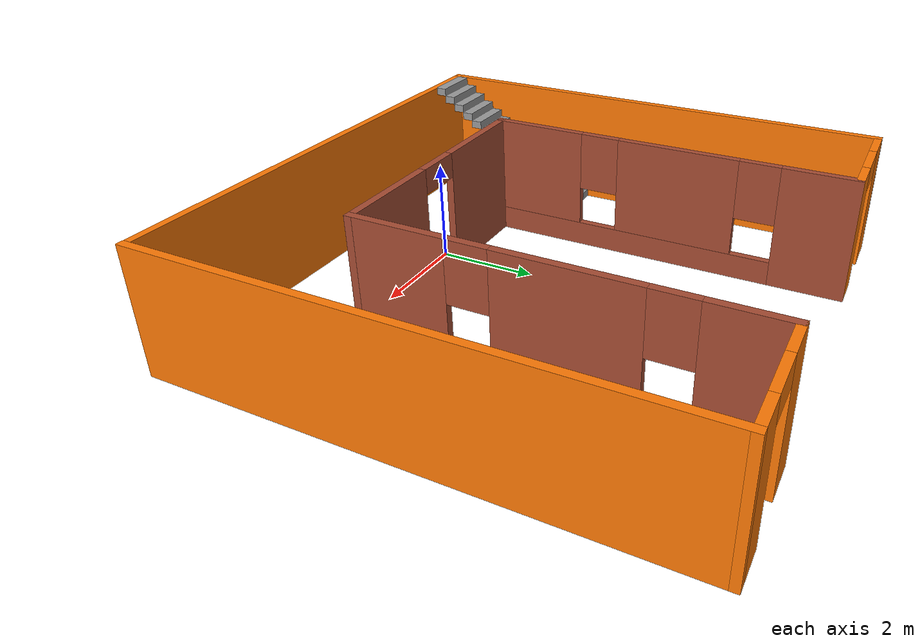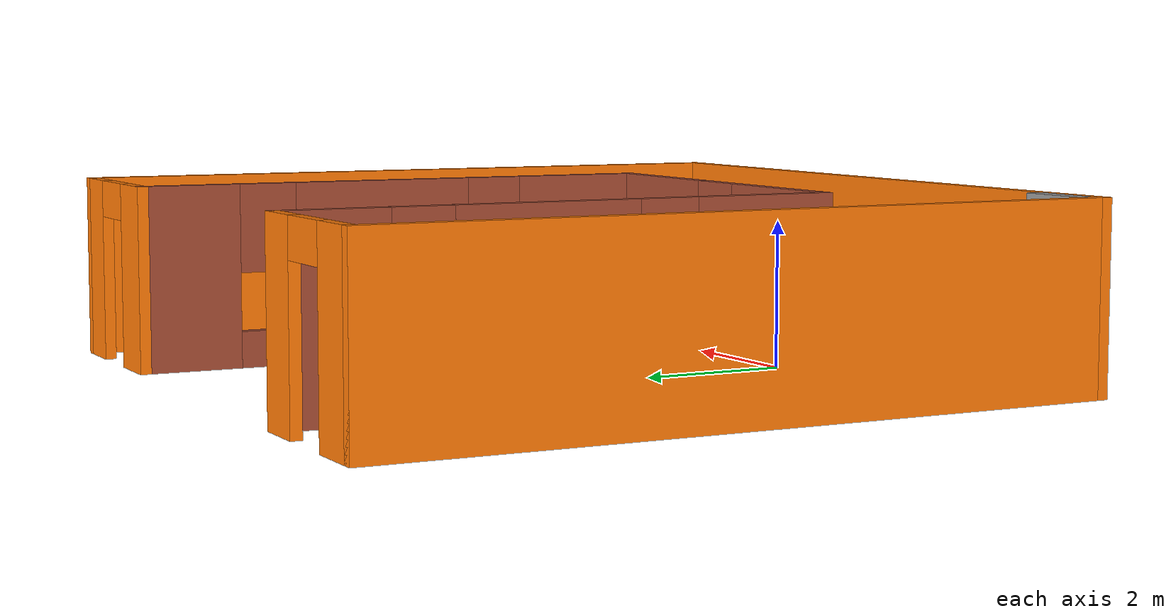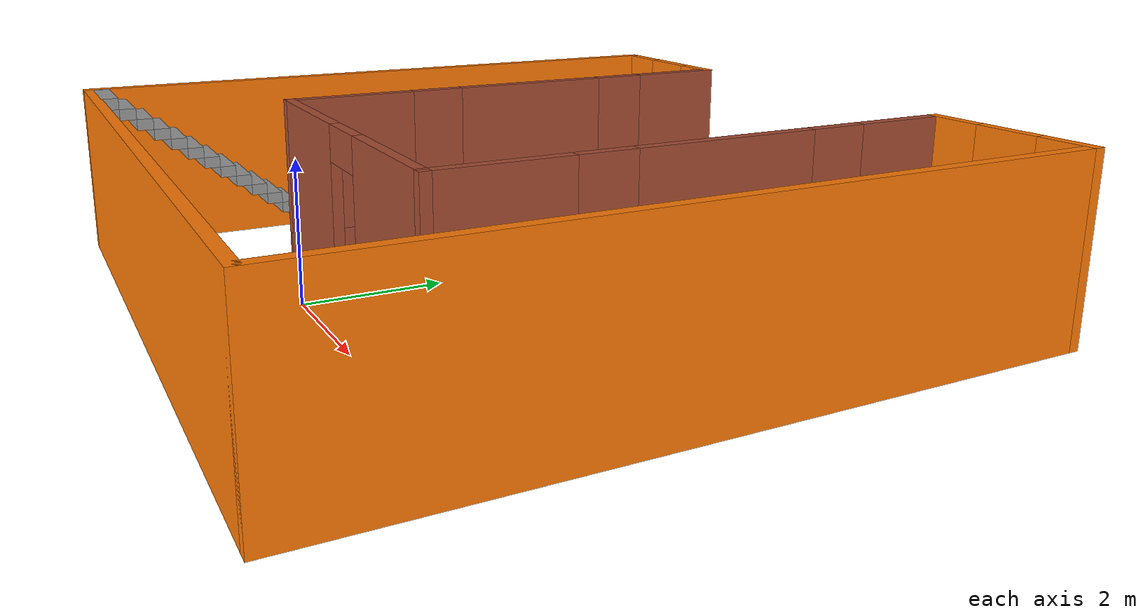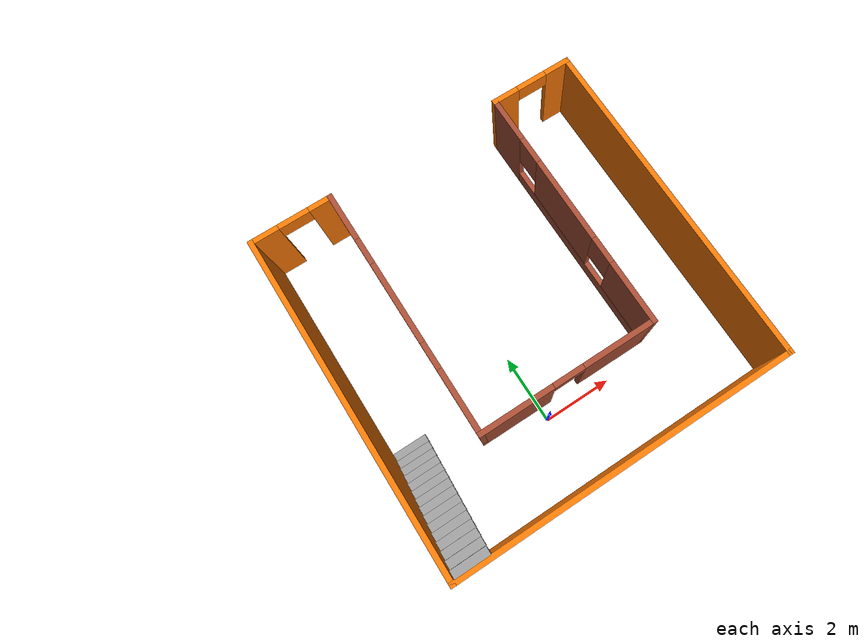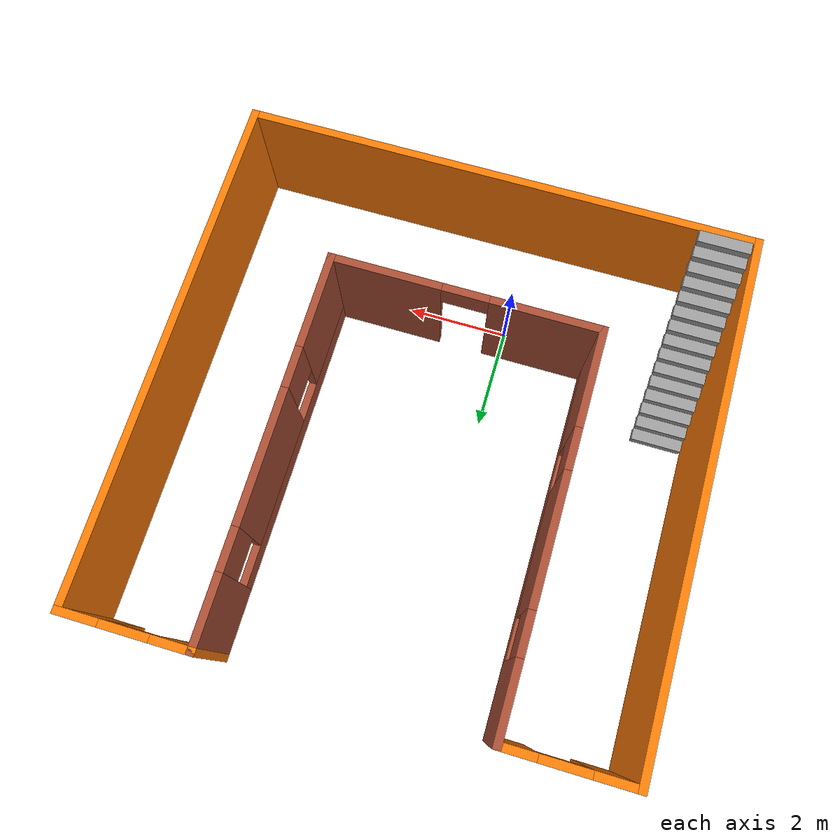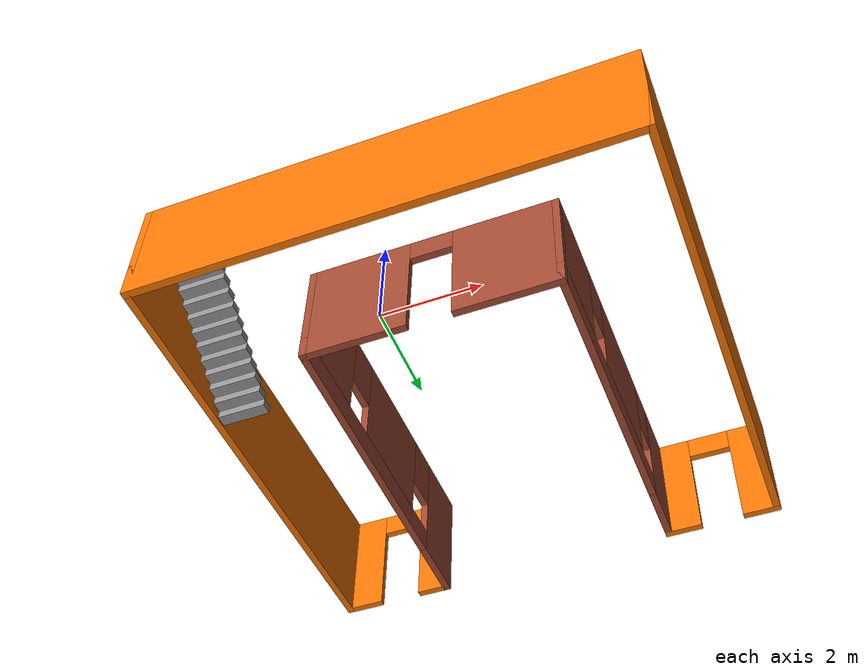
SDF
<?xml version='1.0'?>
<sdf version='1.6'>
  <model name='mybuilding'>
    <pose frame=''>0.805 2.865 0 0 -0 0</pose>
    <link name='Stairs_0'>
      <visual name='Stairs_0_Visual_0'>
        <pose frame=''>-4.32864 -1.48395 0.083333 0 -0 0</pose>
        <geometry>
          <box>
            <size>1 0.233333 0.166667</size>
          </box>
        </geometry>
        <material>
          <script>
            <uri>file://media/materials/scripts/gazebo.material</uri>
            <name>Gazebo/Grey</name>
          </script>
          <ambient>1 1 1 1</ambient>
        </material>
        <meta>
          <layer>0</layer>
        </meta>
      </visual>
      <collision name='Stairs_0_Collision_0'>
        <geometry>
          <box>
            <size>1 0.233333 0.166667</size>
          </box>
        </geometry>
        <pose frame=''>-4.32864 -1.48395 0.083333 0 -0 0</pose>
      </collision>
      <visual name='Stairs_0_Visual_1'>
        <pose frame=''>-4.32864 -1.71729 0.25 0 -0 0</pose>
        <geometry>
          <box>
            <size>1 0.233333 0.166667</size>
          </box>
        </geometry>
        <material>
          <script>
            <uri>file://media/materials/scripts/gazebo.material</uri>
            <name>Gazebo/Grey</name>
          </script>
          <ambient>1 1 1 1</ambient>
        </material>
        <meta>
          <layer>0</layer>
        </meta>
      </visual>
      <collision name='Stairs_0_Collision_1'>
        <geometry>
          <box>
            <size>1 0.233333 0.166667</size>
          </box>
        </geometry>
        <pose frame=''>-4.32864 -1.71729 0.25 0 -0 0</pose>
      </collision>
      <visual name='Stairs_0_Visual_2'>
        <pose frame=''>-4.32864 -1.95062 0.416667 0 -0 0</pose>
        <geometry>
          <box>
            <size>1 0.233333 0.166667</size>
          </box>
        </geometry>
        <material>
          <script>
            <uri>file://media/materials/scripts/gazebo.material</uri>
            <name>Gazebo/Grey</name>
          </script>
          <ambient>1 1 1 1</ambient>
        </material>
        <meta>
          <layer>0</layer>
        </meta>
      </visual>
      <collision name='Stairs_0_Collision_2'>
        <geometry>
          <box>
            <size>1 0.233333 0.166667</size>
          </box>
        </geometry>
        <pose frame=''>-4.32864 -1.95062 0.416667 0 -0 0</pose>
      </collision>
      <visual name='Stairs_0_Visual_3'>
        <pose frame=''>-4.32864 -2.18395 0.583333 0 -0 0</pose>
        <geometry>
          <box>
            <size>1 0.233333 0.166667</size>
          </box>
        </geometry>
        <material>
          <script>
            <uri>file://media/materials/scripts/gazebo.material</uri>
            <name>Gazebo/Grey</name>
          </script>
          <ambient>1 1 1 1</ambient>
        </material>
        <meta>
          <layer>0</layer>
        </meta>
      </visual>
      <collision name='Stairs_0_Collision_3'>
        <geometry>
          <box>
            <size>1 0.233333 0.166667</size>
          </box>
        </geometry>
        <pose frame=''>-4.32864 -2.18395 0.583333 0 -0 0</pose>
      </collision>
      <visual name='Stairs_0_Visual_4'>
        <pose frame=''>-4.32864 -2.41729 0.75 0 -0 0</pose>
        <geometry>
          <box>
            <size>1 0.233333 0.166667</size>
          </box>
        </geometry>
        <material>
          <script>
            <uri>file://media/materials/scripts/gazebo.material</uri>
            <name>Gazebo/Grey</name>
          </script>
          <ambient>1 1 1 1</ambient>
        </material>
        <meta>
          <layer>0</layer>
        </meta>
      </visual>
      <collision name='Stairs_0_Collision_4'>
        <geometry>
          <box>
            <size>1 0.233333 0.166667</size>
          </box>
        </geometry>
        <pose frame=''>-4.32864 -2.41729 0.75 0 -0 0</pose>
      </collision>
      <visual name='Stairs_0_Visual_5'>
        <pose frame=''>-4.32864 -2.65062 0.916667 0 -0 0</pose>
        <geometry>
          <box>
            <size>1 0.233333 0.166667</size>
          </box>
        </geometry>
        <material>
          <script>
            <uri>file://media/materials/scripts/gazebo.material</uri>
            <name>Gazebo/Grey</name>
          </script>
          <ambient>1 1 1 1</ambient>
        </material>
        <meta>
          <layer>0</layer>
        </meta>
      </visual>
      <collision name='Stairs_0_Collision_5'>
        <geometry>
          <box>
            <size>1 0.233333 0.166667</size>
          </box>
        </geometry>
        <pose frame=''>-4.32864 -2.65062 0.916667 0 -0 0</pose>
      </collision>
      <visual name='Stairs_0_Visual_6'>
        <pose frame=''>-4.32864 -2.88395 1.08333 0 -0 0</pose>
        <geometry>
          <box>
            <size>1 0.233333 0.166667</size>
          </box>
        </geometry>
        <material>
          <script>
            <uri>file://media/materials/scripts/gazebo.material</uri>
            <name>Gazebo/Grey</name>
          </script>
          <ambient>1 1 1 1</ambient>
        </material>
        <meta>
          <layer>0</layer>
        </meta>
      </visual>
      <collision name='Stairs_0_Collision_6'>
        <geometry>
          <box>
            <size>1 0.233333 0.166667</size>
          </box>
        </geometry>
        <pose frame=''>-4.32864 -2.88395 1.08333 0 -0 0</pose>
      </collision>
      <visual name='Stairs_0_Visual_7'>
        <pose frame=''>-4.32864 -3.11729 1.25 0 -0 0</pose>
        <geometry>
          <box>
            <size>1 0.233333 0.166667</size>
          </box>
        </geometry>
        <material>
          <script>
            <uri>file://media/materials/scripts/gazebo.material</uri>
            <name>Gazebo/Grey</name>
          </script>
          <ambient>1 1 1 1</ambient>
        </material>
        <meta>
          <layer>0</layer>
        </meta>
      </visual>
      <collision name='Stairs_0_Collision_7'>
        <geometry>
          <box>
            <size>1 0.233333 0.166667</size>
          </box>
        </geometry>
        <pose frame=''>-4.32864 -3.11729 1.25 0 -0 0</pose>
      </collision>
      <visual name='Stairs_0_Visual_8'>
        <pose frame=''>-4.32864 -3.35062 1.41667 0 -0 0</pose>
        <geometry>
          <box>
            <size>1 0.233333 0.166667</size>
          </box>
        </geometry>
        <material>
          <script>
            <uri>file://media/materials/scripts/gazebo.material</uri>
            <name>Gazebo/Grey</name>
          </script>
          <ambient>1 1 1 1</ambient>
        </material>
        <meta>
          <layer>0</layer>
        </meta>
      </visual>
      <collision name='Stairs_0_Collision_8'>
        <geometry>
          <box>
            <size>1 0.233333 0.166667</size>
          </box>
        </geometry>
        <pose frame=''>-4.32864 -3.35062 1.41667 0 -0 0</pose>
      </collision>
      <visual name='Stairs_0_Visual_9'>
        <pose frame=''>-4.32864 -3.58395 1.58333 0 -0 0</pose>
        <geometry>
          <box>
            <size>1 0.233333 0.166667</size>
          </box>
        </geometry>
        <material>
          <script>
            <uri>file://media/materials/scripts/gazebo.material</uri>
            <name>Gazebo/Grey</name>
          </script>
          <ambient>1 1 1 1</ambient>
        </material>
        <meta>
          <layer>0</layer>
        </meta>
      </visual>
      <collision name='Stairs_0_Collision_9'>
        <geometry>
          <box>
            <size>1 0.233333 0.166667</size>
          </box>
        </geometry>
        <pose frame=''>-4.32864 -3.58395 1.58333 0 -0 0</pose>
      </collision>
      <visual name='Stairs_0_Visual_10'>
        <pose frame=''>-4.32864 -3.81729 1.75 0 -0 0</pose>
        <geometry>
          <box>
            <size>1 0.233333 0.166667</size>
          </box>
        </geometry>
        <material>
          <script>
            <uri>file://media/materials/scripts/gazebo.material</uri>
            <name>Gazebo/Grey</name>
          </script>
          <ambient>1 1 1 1</ambient>
        </material>
        <meta>
          <layer>0</layer>
        </meta>
      </visual>
      <collision name='Stairs_0_Collision_10'>
        <geometry>
          <box>
            <size>1 0.233333 0.166667</size>
          </box>
        </geometry>
        <pose frame=''>-4.32864 -3.81729 1.75 0 -0 0</pose>
      </collision>
      <visual name='Stairs_0_Visual_11'>
        <pose frame=''>-4.32864 -4.05062 1.91667 0 -0 0</pose>
        <geometry>
          <box>
            <size>1 0.233333 0.166667</size>
          </box>
        </geometry>
        <material>
          <script>
            <uri>file://media/materials/scripts/gazebo.material</uri>
            <name>Gazebo/Grey</name>
          </script>
          <ambient>1 1 1 1</ambient>
        </material>
        <meta>
          <layer>0</layer>
        </meta>
      </visual>
      <collision name='Stairs_0_Collision_11'>
        <geometry>
          <box>
            <size>1 0.233333 0.166667</size>
          </box>
        </geometry>
        <pose frame=''>-4.32864 -4.05062 1.91667 0 -0 0</pose>
      </collision>
      <visual name='Stairs_0_Visual_12'>
        <pose frame=''>-4.32864 -4.28395 2.08333 0 -0 0</pose>
        <geometry>
          <box>
            <size>1 0.233333 0.166667</size>
          </box>
        </geometry>
        <material>
          <script>
            <uri>file://media/materials/scripts/gazebo.material</uri>
            <name>Gazebo/Grey</name>
          </script>
          <ambient>1 1 1 1</ambient>
        </material>
        <meta>
          <layer>0</layer>
        </meta>
      </visual>
      <collision name='Stairs_0_Collision_12'>
        <geometry>
          <box>
            <size>1 0.233333 0.166667</size>
          </box>
        </geometry>
        <pose frame=''>-4.32864 -4.28395 2.08333 0 -0 0</pose>
      </collision>
      <visual name='Stairs_0_Visual_13'>
        <pose frame=''>-4.32864 -4.51729 2.25 0 -0 0</pose>
        <geometry>
          <box>
            <size>1 0.233333 0.166667</size>
          </box>
        </geometry>
        <material>
          <script>
            <uri>file://media/materials/scripts/gazebo.material</uri>
            <name>Gazebo/Grey</name>
          </script>
          <ambient>1 1 1 1</ambient>
        </material>
        <meta>
          <layer>0</layer>
        </meta>
      </visual>
      <collision name='Stairs_0_Collision_13'>
        <geometry>
          <box>
            <size>1 0.233333 0.166667</size>
          </box>
        </geometry>
        <pose frame=''>-4.32864 -4.51729 2.25 0 -0 0</pose>
      </collision>
      <visual name='Stairs_0_Visual_14'>
        <pose frame=''>-4.32864 -4.75062 2.41667 0 -0 0</pose>
        <geometry>
          <box>
            <size>1 0.233333 0.166667</size>
          </box>
        </geometry>
        <material>
          <script>
            <uri>file://media/materials/scripts/gazebo.material</uri>
            <name>Gazebo/Grey</name>
          </script>
          <ambient>1 1 1 1</ambient>
        </material>
        <meta>
          <layer>0</layer>
        </meta>
      </visual>
      <collision name='Stairs_0_Collision_14'>
        <geometry>
          <box>
            <size>1 0.233333 0.166667</size>
          </box>
        </geometry>
        <pose frame=''>-4.32864 -4.75062 2.41667 0 -0 0</pose>
      </collision>
    </link>
    <link name='Wall_0'>
      <collision name='Wall_0_Collision'>
        <geometry>
          <box>
            <size>10 0.15 2.5</size>
          </box>
        </geometry>
        <pose frame=''>0 0 1.25 0 -0 0</pose>
      </collision>
      <visual name='Wall_0_Visual'>
        <pose frame=''>0 0 1.25 0 -0 0</pose>
        <geometry>
          <box>
            <size>10 0.15 2.5</size>
          </box>
        </geometry>
        <material>
          <script>
            <uri>file://media/materials/scripts/gazebo.material</uri>
            <name>Gazebo/Grey</name>
          </script>
          <ambient>0.996078 0.47451 0.0196078 1</ambient>
        </material>
        <meta>
          <layer>0</layer>
        </meta>
      </visual>
      <pose frame=''>-4.925 0 0 0 -0 1.5708</pose>
    </link>
    <link name='Wall_1'>
      <pose frame=''>-3.75 4.925 0 0 -0 0</pose>
      <visual name='Wall_1_Visual_0'>
        <pose frame=''>-0.815997 0 1.25 0 -0 0</pose>
        <geometry>
          <box>
            <size>0.868005 0.15 2.5</size>
          </box>
        </geometry>
        <material>
          <script>
            <uri>file://media/materials/scripts/gazebo.material</uri>
            <name>Gazebo/Grey</name>
          </script>
          <ambient>0.996078 0.47451 0.0196078 1</ambient>
        </material>
        <meta>
          <layer>0</layer>
        </meta>
      </visual>
      <collision name='Wall_1_Collision_0'>
        <geometry>
          <box>
            <size>0.868005 0.15 2.5</size>
          </box>
        </geometry>
        <pose frame=''>-0.815997 0 1.25 0 -0 0</pose>
      </collision>
      <visual name='Wall_1_Visual_1'>
        <pose frame=''>0.884003 0 1.25 0 -0 0</pose>
        <geometry>
          <box>
            <size>0.731995 0.15 2.5</size>
          </box>
        </geometry>
        <material>
          <script>
            <uri>file://media/materials/scripts/gazebo.material</uri>
            <name>Gazebo/Grey</name>
          </script>
          <ambient>0.996078 0.47451 0.0196078 1</ambient>
        </material>
        <meta>
          <layer>0</layer>
        </meta>
      </visual>
      <collision name='Wall_1_Collision_1'>
        <geometry>
          <box>
            <size>0.731995 0.15 2.5</size>
          </box>
        </geometry>
        <pose frame=''>0.884003 0 1.25 0 -0 0</pose>
      </collision>
      <visual name='Wall_1_Visual_2'>
        <pose frame=''>0.068005 0 2.25 0 -0 0</pose>
        <geometry>
          <box>
            <size>0.9 0.15 0.5</size>
          </box>
        </geometry>
        <material>
          <script>
            <uri>file://media/materials/scripts/gazebo.material</uri>
            <name>Gazebo/Grey</name>
          </script>
          <ambient>0.996078 0.47451 0.0196078 1</ambient>
        </material>
        <meta>
          <layer>0</layer>
        </meta>
      </visual>
      <collision name='Wall_1_Collision_2'>
        <geometry>
          <box>
            <size>0.9 0.15 0.5</size>
          </box>
        </geometry>
        <pose frame=''>0.068005 0 2.25 0 -0 0</pose>
      </collision>
    </link>
    <link name='Wall_10'>
      <pose frame=''>0 -2.425 0 0 -0 0</pose>
      <visual name='Wall_10_Visual_0'>
        <pose frame=''>-1.5508 0 1.25 0 -0 0</pose>
        <geometry>
          <box>
            <size>2.19841 0.15 2.5</size>
          </box>
        </geometry>
        <material>
          <script>
            <uri>file://media/materials/scripts/gazebo.material</uri>
            <name>Gazebo/Bricks</name>
          </script>
          <ambient>0.435294 0.796078 0.67451 1</ambient>
        </material>
        <meta>
          <layer>0</layer>
        </meta>
      </visual>
      <collision name='Wall_10_Collision_0'>
        <geometry>
          <box>
            <size>2.19841 0.15 2.5</size>
          </box>
        </geometry>
        <pose frame=''>-1.5508 0 1.25 0 -0 0</pose>
      </collision>
      <visual name='Wall_10_Visual_1'>
        <pose frame=''>1.5492 0 1.25 0 -0 0</pose>
        <geometry>
          <box>
            <size>2.20159 0.15 2.5</size>
          </box>
        </geometry>
        <material>
          <script>
            <uri>file://media/materials/scripts/gazebo.material</uri>
            <name>Gazebo/Bricks</name>
          </script>
          <ambient>0.435294 0.796078 0.67451 1</ambient>
        </material>
        <meta>
          <layer>0</layer>
        </meta>
      </visual>
      <collision name='Wall_10_Collision_1'>
        <geometry>
          <box>
            <size>2.20159 0.15 2.5</size>
          </box>
        </geometry>
        <pose frame=''>1.5492 0 1.25 0 -0 0</pose>
      </collision>
      <visual name='Wall_10_Visual_2'>
        <pose frame=''>-0.001594 0 2.25 0 -0 0</pose>
        <geometry>
          <box>
            <size>0.9 0.15 0.5</size>
          </box>
        </geometry>
        <material>
          <script>
            <uri>file://media/materials/scripts/gazebo.material</uri>
            <name>Gazebo/Bricks</name>
          </script>
          <ambient>0.435294 0.796078 0.67451 1</ambient>
        </material>
        <meta>
          <layer>0</layer>
        </meta>
      </visual>
      <collision name='Wall_10_Collision_2'>
        <geometry>
          <box>
            <size>0.9 0.15 0.5</size>
          </box>
        </geometry>
        <pose frame=''>-0.001594 0 2.25 0 -0 0</pose>
      </collision>
    </link>
    <link name='Wall_3'>
      <pose frame=''>-2.575 1.25 0 0 0 -1.5708</pose>
      <visual name='Wall_3_Visual_0'>
        <pose frame=''>-3.01228 0 1.25 0 -0 0</pose>
        <geometry>
          <box>
            <size>1.47543 0.15 2.5</size>
          </box>
        </geometry>
        <material>
          <script>
            <uri>file://media/materials/scripts/gazebo.material</uri>
            <name>Gazebo/Bricks</name>
          </script>
          <ambient>0.435294 0.796078 0.67451 1</ambient>
        </material>
        <meta>
          <layer>0</layer>
        </meta>
      </visual>
      <collision name='Wall_3_Collision_0'>
        <geometry>
          <box>
            <size>1.47543 0.15 2.5</size>
          </box>
        </geometry>
        <pose frame=''>-3.01228 0 1.25 0 -0 0</pose>
      </collision>
      <visual name='Wall_3_Visual_1'>
        <pose frame=''>0.737716 0 0.25 0 -0 0</pose>
        <geometry>
          <box>
            <size>6.02457 0.15 0.5</size>
          </box>
        </geometry>
        <material>
          <script>
            <uri>file://media/materials/scripts/gazebo.material</uri>
            <name>Gazebo/Bricks</name>
          </script>
          <ambient>0.435294 0.796078 0.67451 1</ambient>
        </material>
        <meta>
          <layer>0</layer>
        </meta>
      </visual>
      <collision name='Wall_3_Collision_1'>
        <geometry>
          <box>
            <size>6.02457 0.15 0.5</size>
          </box>
        </geometry>
        <pose frame=''>0.737716 0 0.25 0 -0 0</pose>
      </collision>
      <visual name='Wall_3_Visual_2'>
        <pose frame=''>-0.245368 0 1.5 0 -0 0</pose>
        <geometry>
          <box>
            <size>2.4584 0.15 2</size>
          </box>
        </geometry>
        <material>
          <script>
            <uri>file://media/materials/scripts/gazebo.material</uri>
            <name>Gazebo/Bricks</name>
          </script>
          <ambient>0.435294 0.796078 0.67451 1</ambient>
        </material>
        <meta>
          <layer>0</layer>
        </meta>
      </visual>
      <collision name='Wall_3_Collision_2'>
        <geometry>
          <box>
            <size>2.4584 0.15 2</size>
          </box>
        </geometry>
        <pose frame=''>-0.245368 0 1.5 0 -0 0</pose>
      </collision>
      <visual name='Wall_3_Visual_3'>
        <pose frame=''>2.76692 0 1.5 0 -0 0</pose>
        <geometry>
          <box>
            <size>1.96617 0.15 2</size>
          </box>
        </geometry>
        <material>
          <script>
            <uri>file://media/materials/scripts/gazebo.material</uri>
            <name>Gazebo/Bricks</name>
          </script>
          <ambient>0.435294 0.796078 0.67451 1</ambient>
        </material>
        <meta>
          <layer>0</layer>
        </meta>
      </visual>
      <collision name='Wall_3_Collision_3'>
        <geometry>
          <box>
            <size>1.96617 0.15 2</size>
          </box>
        </geometry>
        <pose frame=''>2.76692 0 1.5 0 -0 0</pose>
      </collision>
      <visual name='Wall_3_Visual_4'>
        <pose frame=''>-1.87457 0 1.9 0 -0 0</pose>
        <geometry>
          <box>
            <size>0.8 0.15 1.2</size>
          </box>
        </geometry>
        <material>
          <script>
            <uri>file://media/materials/scripts/gazebo.material</uri>
            <name>Gazebo/Bricks</name>
          </script>
          <ambient>0.435294 0.796078 0.67451 1</ambient>
        </material>
        <meta>
          <layer>0</layer>
        </meta>
      </visual>
      <collision name='Wall_3_Collision_4'>
        <geometry>
          <box>
            <size>0.8 0.15 1.2</size>
          </box>
        </geometry>
        <pose frame=''>-1.87457 0 1.9 0 -0 0</pose>
      </collision>
      <visual name='Wall_3_Visual_5'>
        <pose frame=''>1.38383 0 1.9 0 -0 0</pose>
        <geometry>
          <box>
            <size>0.8 0.15 1.2</size>
          </box>
        </geometry>
        <material>
          <script>
            <uri>file://media/materials/scripts/gazebo.material</uri>
            <name>Gazebo/Bricks</name>
          </script>
          <ambient>0.435294 0.796078 0.67451 1</ambient>
        </material>
        <meta>
          <layer>0</layer>
        </meta>
      </visual>
      <collision name='Wall_3_Collision_5'>
        <geometry>
          <box>
            <size>0.8 0.15 1.2</size>
          </box>
        </geometry>
        <pose frame=''>1.38383 0 1.9 0 -0 0</pose>
      </collision>
    </link>
    <link name='Wall_5'>
      <collision name='Wall_5_Collision'>
        <geometry>
          <box>
            <size>10 0.15 2.5</size>
          </box>
        </geometry>
        <pose frame=''>0 0 1.25 0 -0 0</pose>
      </collision>
      <visual name='Wall_5_Visual'>
        <pose frame=''>0 0 1.25 0 -0 0</pose>
        <geometry>
          <box>
            <size>10 0.15 2.5</size>
          </box>
        </geometry>
        <material>
          <script>
            <uri>file://media/materials/scripts/gazebo.material</uri>
            <name>Gazebo/Grey</name>
          </script>
          <ambient>0.996078 0.47451 0.0196078 1</ambient>
        </material>
        <meta>
          <layer>0</layer>
        </meta>
      </visual>
      <pose frame=''>0 -4.925 0 0 -0 0</pose>
    </link>
    <link name='Wall_6'>
      <collision name='Wall_6_Collision'>
        <geometry>
          <box>
            <size>10 0.15 2.5</size>
          </box>
        </geometry>
        <pose frame=''>0 0 1.25 0 -0 0</pose>
      </collision>
      <visual name='Wall_6_Visual'>
        <pose frame=''>0 0 1.25 0 -0 0</pose>
        <geometry>
          <box>
            <size>10 0.15 2.5</size>
          </box>
        </geometry>
        <material>
          <script>
            <uri>file://media/materials/scripts/gazebo.material</uri>
            <name>Gazebo/Grey</name>
          </script>
          <ambient>0.996078 0.47451 0.0196078 1</ambient>
        </material>
        <meta>
          <layer>0</layer>
        </meta>
      </visual>
      <pose frame=''>4.925 0 0 0 -0 1.5708</pose>
    </link>
    <link name='Wall_7'>
      <pose frame=''>3.75 4.925 0 0 -0 3.14159</pose>
      <visual name='Wall_7_Visual_0'>
        <pose frame=''>-0.851394 0 1.25 0 -0 0</pose>
        <geometry>
          <box>
            <size>0.797212 0.15 2.5</size>
          </box>
        </geometry>
        <material>
          <script>
            <uri>file://media/materials/scripts/gazebo.material</uri>
            <name>Gazebo/Grey</name>
          </script>
          <ambient>0.996078 0.47451 0.0196078 1</ambient>
        </material>
        <meta>
          <layer>0</layer>
        </meta>
      </visual>
      <collision name='Wall_7_Collision_0'>
        <geometry>
          <box>
            <size>0.797212 0.15 2.5</size>
          </box>
        </geometry>
        <pose frame=''>-0.851394 0 1.25 0 -0 0</pose>
      </collision>
      <visual name='Wall_7_Visual_1'>
        <pose frame=''>0.848606 0 1.25 0 -0 0</pose>
        <geometry>
          <box>
            <size>0.802788 0.15 2.5</size>
          </box>
        </geometry>
        <material>
          <script>
            <uri>file://media/materials/scripts/gazebo.material</uri>
            <name>Gazebo/Grey</name>
          </script>
          <ambient>0.996078 0.47451 0.0196078 1</ambient>
        </material>
        <meta>
          <layer>0</layer>
        </meta>
      </visual>
      <collision name='Wall_7_Collision_1'>
        <geometry>
          <box>
            <size>0.802788 0.15 2.5</size>
          </box>
        </geometry>
        <pose frame=''>0.848606 0 1.25 0 -0 0</pose>
      </collision>
      <visual name='Wall_7_Visual_2'>
        <pose frame=''>-0.002788 0 2.25 0 -0 0</pose>
        <geometry>
          <box>
            <size>0.9 0.15 0.5</size>
          </box>
        </geometry>
        <material>
          <script>
            <uri>file://media/materials/scripts/gazebo.material</uri>
            <name>Gazebo/Grey</name>
          </script>
          <ambient>0.996078 0.47451 0.0196078 1</ambient>
        </material>
        <meta>
          <layer>0</layer>
        </meta>
      </visual>
      <collision name='Wall_7_Collision_2'>
        <geometry>
          <box>
            <size>0.9 0.15 0.5</size>
          </box>
        </geometry>
        <pose frame=''>-0.002788 0 2.25 0 -0 0</pose>
      </collision>
    </link>
    <link name='Wall_8'>
      <pose frame=''>2.575 1.25 0 0 0 -1.5708</pose>
      <visual name='Wall_8_Visual_0'>
        <pose frame=''>-3.04245 0 1.25 0 -0 0</pose>
        <geometry>
          <box>
            <size>1.41509 0.15 2.5</size>
          </box>
        </geometry>
        <material>
          <script>
            <uri>file://media/materials/scripts/gazebo.material</uri>
            <name>Gazebo/Bricks</name>
          </script>
          <ambient>0.435294 0.796078 0.67451 1</ambient>
        </material>
        <meta>
          <layer>0</layer>
        </meta>
      </visual>
      <collision name='Wall_8_Collision_0'>
        <geometry>
          <box>
            <size>1.41509 0.15 2.5</size>
          </box>
        </geometry>
        <pose frame=''>-3.04245 0 1.25 0 -0 0</pose>
      </collision>
      <visual name='Wall_8_Visual_1'>
        <pose frame=''>0.707546 0 0.25 0 -0 0</pose>
        <geometry>
          <box>
            <size>6.08491 0.15 0.5</size>
          </box>
        </geometry>
        <material>
          <script>
            <uri>file://media/materials/scripts/gazebo.material</uri>
            <name>Gazebo/Bricks</name>
          </script>
          <ambient>0.435294 0.796078 0.67451 1</ambient>
        </material>
        <meta>
          <layer>0</layer>
        </meta>
      </visual>
      <collision name='Wall_8_Collision_1'>
        <geometry>
          <box>
            <size>6.08491 0.15 0.5</size>
          </box>
        </geometry>
        <pose frame=''>0.707546 0 0.25 0 -0 0</pose>
      </collision>
      <visual name='Wall_8_Visual_2'>
        <pose frame=''>-0.245368 0 1.5 0 -0 0</pose>
        <geometry>
          <box>
            <size>2.57908 0.15 2</size>
          </box>
        </geometry>
        <material>
          <script>
            <uri>file://media/materials/scripts/gazebo.material</uri>
            <name>Gazebo/Bricks</name>
          </script>
          <ambient>0.435294 0.796078 0.67451 1</ambient>
        </material>
        <meta>
          <layer>0</layer>
        </meta>
      </visual>
      <collision name='Wall_8_Collision_2'>
        <geometry>
          <box>
            <size>2.57908 0.15 2</size>
          </box>
        </geometry>
        <pose frame=''>-0.245368 0 1.5 0 -0 0</pose>
      </collision>
      <visual name='Wall_8_Visual_3'>
        <pose frame=''>2.79709 0 1.5 0 -0 0</pose>
        <geometry>
          <box>
            <size>1.90583 0.15 2</size>
          </box>
        </geometry>
        <material>
          <script>
            <uri>file://media/materials/scripts/gazebo.material</uri>
            <name>Gazebo/Bricks</name>
          </script>
          <ambient>0.435294 0.796078 0.67451 1</ambient>
        </material>
        <meta>
          <layer>0</layer>
        </meta>
      </visual>
      <collision name='Wall_8_Collision_3'>
        <geometry>
          <box>
            <size>1.90583 0.15 2</size>
          </box>
        </geometry>
        <pose frame=''>2.79709 0 1.5 0 -0 0</pose>
      </collision>
      <visual name='Wall_8_Visual_4'>
        <pose frame=''>-1.93491 0 1.9 0 -0 0</pose>
        <geometry>
          <box>
            <size>0.8 0.15 1.2</size>
          </box>
        </geometry>
        <material>
          <script>
            <uri>file://media/materials/scripts/gazebo.material</uri>
            <name>Gazebo/Bricks</name>
          </script>
          <ambient>0.435294 0.796078 0.67451 1</ambient>
        </material>
        <meta>
          <layer>0</layer>
        </meta>
      </visual>
      <collision name='Wall_8_Collision_4'>
        <geometry>
          <box>
            <size>0.8 0.15 1.2</size>
          </box>
        </geometry>
        <pose frame=''>-1.93491 0 1.9 0 -0 0</pose>
      </collision>
      <visual name='Wall_8_Visual_5'>
        <pose frame=''>1.44417 0 1.9 0 -0 0</pose>
        <geometry>
          <box>
            <size>0.8 0.15 1.2</size>
          </box>
        </geometry>
        <material>
          <script>
            <uri>file://media/materials/scripts/gazebo.material</uri>
            <name>Gazebo/Bricks</name>
          </script>
          <ambient>0.435294 0.796078 0.67451 1</ambient>
        </material>
        <meta>
          <layer>0</layer>
        </meta>
      </visual>
      <collision name='Wall_8_Collision_5'>
        <geometry>
          <box>
            <size>0.8 0.15 1.2</size>
          </box>
        </geometry>
        <pose frame=''>1.44417 0 1.9 0 -0 0</pose>
      </collision>
    </link>
    <static>1</static>
  </model>
</sdf>
